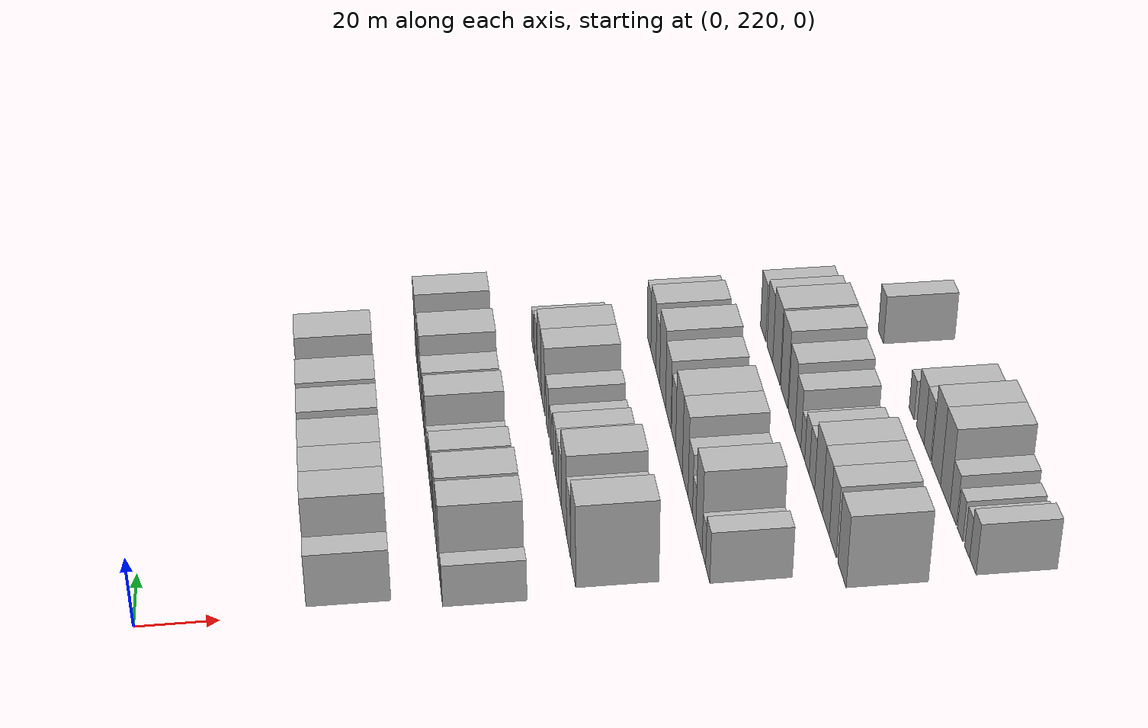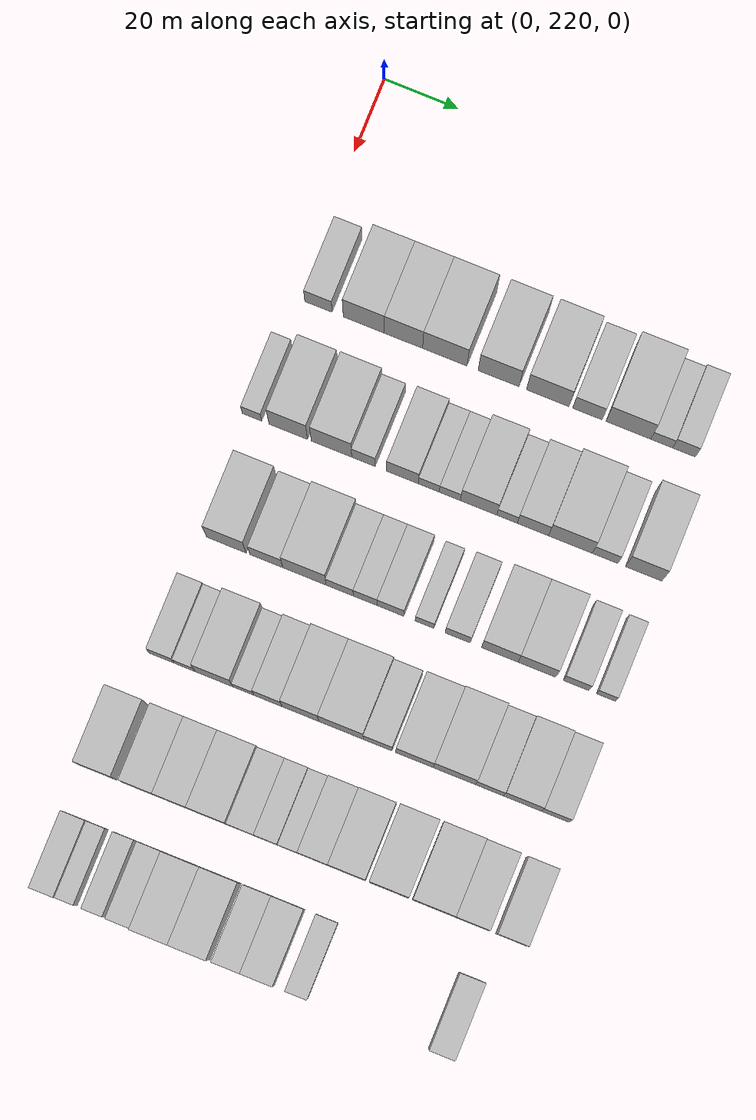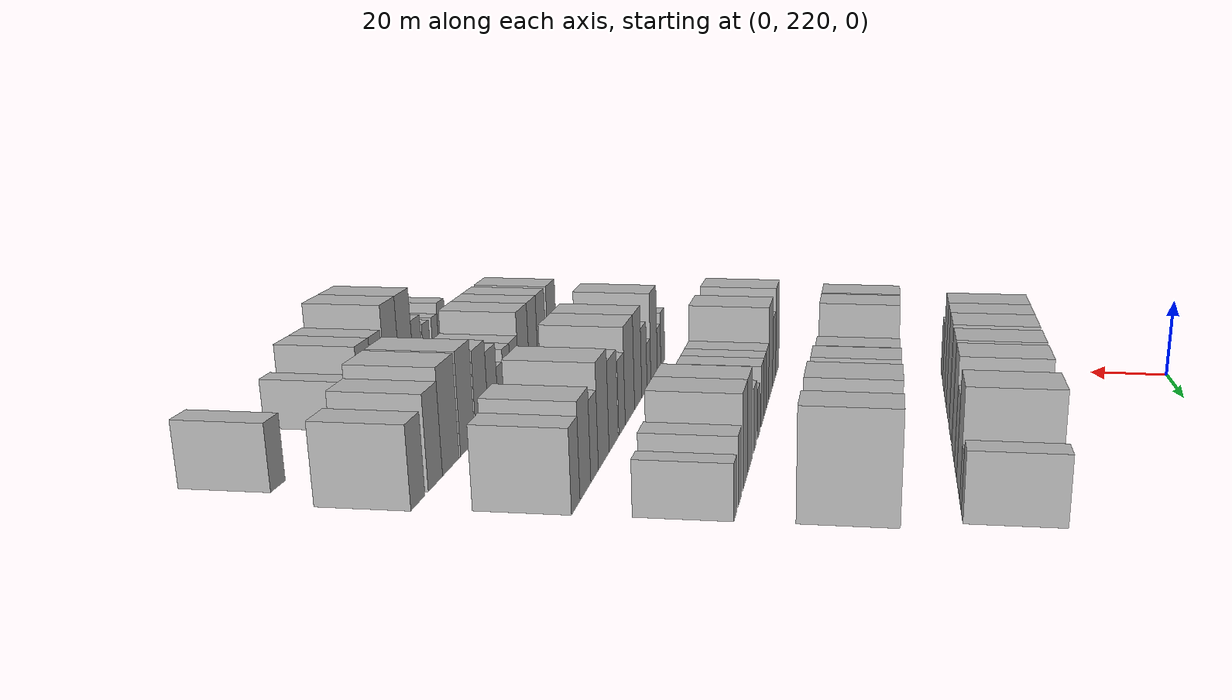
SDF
<sdf version="1.6">
 <world name="default">
  <model name="building_78">
   <static>1</static>
   <pose>50.0000 226.4135 0 0.000000 0.000000 0.000000</pose>
   <link name="link">
    <pose>0 0 7.50 0 0 0</pose>
    <collision name="collision"><geometry><box><size>20.0000 7.3429 15.0000</size></box></geometry></collision>
    <visual name="visual">
     <cast_shadows>0</cast_shadows>
     <geometry><box><size>20.0000 7.3429 15.0000</size></box></geometry>
     <material>
      <script>
       <uri>model://HANNAS_wall/materials/scripts</uri>
       <uri>model://HANNAS_wall/materials/textures</uri>
       <name>vrc/HANNAS_wall</name>
      </script>
     </material>
    </visual>
   </link>
  </model>
  <model name="building_79">
   <static>1</static>
   <pose>50.0000 238.5901 0 0.000000 0.000000 0.000000</pose>
   <link name="link">
    <pose>0 0 12.00 0 0 0</pose>
    <collision name="collision"><geometry><box><size>20.0000 11.0103 24.0000</size></box></geometry></collision>
    <visual name="visual">
     <cast_shadows>0</cast_shadows>
     <geometry><box><size>20.0000 11.0103 24.0000</size></box></geometry>
     <material>
      <script>
       <uri>model://HANNAS_wall/materials/scripts</uri>
       <uri>model://HANNAS_wall/materials/textures</uri>
       <name>vrc/HANNAS_wall</name>
      </script>
     </material>
    </visual>
   </link>
  </model>
  <model name="building_80">
   <static>1</static>
   <pose>50.0000 249.2594 0 0.000000 0.000000 0.000000</pose>
   <link name="link">
    <pose>0 0 12.00 0 0 0</pose>
    <collision name="collision"><geometry><box><size>20.0000 10.3283 24.0000</size></box></geometry></collision>
    <visual name="visual">
     <cast_shadows>0</cast_shadows>
     <geometry><box><size>20.0000 10.3283 24.0000</size></box></geometry>
     <material>
      <script>
       <uri>model://HANNAS_wall/materials/scripts</uri>
       <uri>model://HANNAS_wall/materials/textures</uri>
       <name>vrc/HANNAS_wall</name>
      </script>
     </material>
    </visual>
   </link>
  </model>
  <model name="building_81">
   <static>1</static>
   <pose>50.0000 260.3841 0 0.000000 0.000000 0.000000</pose>
   <link name="link">
    <pose>0 0 12.00 0 0 0</pose>
    <collision name="collision"><geometry><box><size>20.0000 11.9211 24.0000</size></box></geometry></collision>
    <visual name="visual">
     <cast_shadows>0</cast_shadows>
     <geometry><box><size>20.0000 11.9211 24.0000</size></box></geometry>
     <material>
      <script>
       <uri>model://HANNAS_wall/materials/scripts</uri>
       <uri>model://HANNAS_wall/materials/textures</uri>
       <name>vrc/HANNAS_wall</name>
      </script>
     </material>
    </visual>
   </link>
  </model>
  <model name="building_82">
   <static>1</static>
   <pose>50.0000 274.8255 0 0.000000 0.000000 0.000000</pose>
   <link name="link">
    <pose>0 0 12.00 0 0 0</pose>
    <collision name="collision"><geometry><box><size>20.0000 10.9617 24.0000</size></box></geometry></collision>
    <visual name="visual">
     <cast_shadows>0</cast_shadows>
     <geometry><box><size>20.0000 10.9617 24.0000</size></box></geometry>
     <material>
      <script>
       <uri>model://HANNAS_wall/materials/scripts</uri>
       <uri>model://HANNAS_wall/materials/textures</uri>
       <name>vrc/HANNAS_wall</name>
      </script>
     </material>
    </visual>
   </link>
  </model>
  <model name="building_83">
   <static>1</static>
   <pose>50.0000 287.9975 0 0.000000 0.000000 0.000000</pose>
   <link name="link">
    <pose>0 0 12.00 0 0 0</pose>
    <collision name="collision"><geometry><box><size>20.0000 11.3823 24.0000</size></box></geometry></collision>
    <visual name="visual">
     <cast_shadows>0</cast_shadows>
     <geometry><box><size>20.0000 11.3823 24.0000</size></box></geometry>
     <material>
      <script>
       <uri>model://HANNAS_wall/materials/scripts</uri>
       <uri>model://HANNAS_wall/materials/textures</uri>
       <name>vrc/HANNAS_wall</name>
      </script>
     </material>
    </visual>
   </link>
  </model>
  <model name="building_84">
   <static>1</static>
   <pose>50.0000 298.6449 0 0.000000 0.000000 0.000000</pose>
   <link name="link">
    <pose>0 0 9.00 0 0 0</pose>
    <collision name="collision"><geometry><box><size>20.0000 7.9124 18.0000</size></box></geometry></collision>
    <visual name="visual">
     <cast_shadows>0</cast_shadows>
     <geometry><box><size>20.0000 7.9124 18.0000</size></box></geometry>
     <material>
      <script>
       <uri>model://HANNAS_wall/materials/scripts</uri>
       <uri>model://HANNAS_wall/materials/textures</uri>
       <name>vrc/HANNAS_wall</name>
      </script>
     </material>
    </visual>
   </link>
  </model>
  <model name="building_85">
   <static>1</static>
   <pose>50.0000 309.5856 0 0.000000 0.000000 0.000000</pose>
   <link name="link">
    <pose>0 0 12.00 0 0 0</pose>
    <collision name="collision"><geometry><box><size>20.0000 11.9690 24.0000</size></box></geometry></collision>
    <visual name="visual">
     <cast_shadows>0</cast_shadows>
     <geometry><box><size>20.0000 11.9690 24.0000</size></box></geometry>
     <material>
      <script>
       <uri>model://HANNAS_wall/materials/scripts</uri>
       <uri>model://HANNAS_wall/materials/textures</uri>
       <name>vrc/HANNAS_wall</name>
      </script>
     </material>
    </visual>
   </link>
  </model>
  <model name="building_86">
   <static>1</static>
   <pose>50.0000 318.4888 0 0.000000 0.000000 0.000000</pose>
   <link name="link">
    <pose>0 0 6.00 0 0 0</pose>
    <collision name="collision"><geometry><box><size>20.0000 5.8375 12.0000</size></box></geometry></collision>
    <visual name="visual">
     <cast_shadows>0</cast_shadows>
     <geometry><box><size>20.0000 5.8375 12.0000</size></box></geometry>
     <material>
      <script>
       <uri>model://HANNAS_wall/materials/scripts</uri>
       <uri>model://HANNAS_wall/materials/textures</uri>
       <name>vrc/HANNAS_wall</name>
      </script>
     </material>
    </visual>
   </link>
  </model>
  <model name="building_87">
   <static>1</static>
   <pose>50.0000 324.4644 0 0.000000 0.000000 0.000000</pose>
   <link name="link">
    <pose>0 0 7.50 0 0 0</pose>
    <collision name="collision"><geometry><box><size>20.0000 6.1135 15.0000</size></box></geometry></collision>
    <visual name="visual">
     <cast_shadows>0</cast_shadows>
     <geometry><box><size>20.0000 6.1135 15.0000</size></box></geometry>
     <material>
      <script>
       <uri>model://HANNAS_wall/materials/scripts</uri>
       <uri>model://HANNAS_wall/materials/textures</uri>
       <name>vrc/HANNAS_wall</name>
      </script>
     </material>
    </visual>
   </link>
  </model>
  <model name="building_179">
   <static>1</static>
   <pose>82.0000 221.5475 0 0.000000 0.000000 0.000000</pose>
   <link name="link">
    <pose>0 0 6.00 0 0 0</pose>
    <collision name="collision"><geometry><box><size>20.0000 5.1951 12.0000</size></box></geometry></collision>
    <visual name="visual">
     <cast_shadows>0</cast_shadows>
     <geometry><box><size>20.0000 5.1951 12.0000</size></box></geometry>
     <material>
      <script>
       <uri>model://HANNAS_wall/materials/scripts</uri>
       <uri>model://HANNAS_wall/materials/textures</uri>
       <name>vrc/HANNAS_wall</name>
      </script>
     </material>
    </visual>
   </link>
  </model>
  <model name="building_180">
   <static>1</static>
   <pose>82.0000 231.3109 0 0.000000 0.000000 0.000000</pose>
   <link name="link">
    <pose>0 0 12.00 0 0 0</pose>
    <collision name="collision"><geometry><box><size>20.0000 10.3318 24.0000</size></box></geometry></collision>
    <visual name="visual">
     <cast_shadows>0</cast_shadows>
     <geometry><box><size>20.0000 10.3318 24.0000</size></box></geometry>
     <material>
      <script>
       <uri>model://HANNAS_wall/materials/scripts</uri>
       <uri>model://HANNAS_wall/materials/textures</uri>
       <name>vrc/HANNAS_wall</name>
      </script>
     </material>
    </visual>
   </link>
  </model>
  <model name="building_181">
   <static>1</static>
   <pose>82.0000 242.8859 0 0.000000 0.000000 0.000000</pose>
   <link name="link">
    <pose>0 0 12.00 0 0 0</pose>
    <collision name="collision"><geometry><box><size>20.0000 10.8182 24.0000</size></box></geometry></collision>
    <visual name="visual">
     <cast_shadows>0</cast_shadows>
     <geometry><box><size>20.0000 10.8182 24.0000</size></box></geometry>
     <material>
      <script>
       <uri>model://HANNAS_wall/materials/scripts</uri>
       <uri>model://HANNAS_wall/materials/textures</uri>
       <name>vrc/HANNAS_wall</name>
      </script>
     </material>
    </visual>
   </link>
  </model>
  <model name="building_182">
   <static>1</static>
   <pose>82.0000 251.4532 0 0.000000 0.000000 0.000000</pose>
   <link name="link">
    <pose>0 0 7.50 0 0 0</pose>
    <collision name="collision"><geometry><box><size>20.0000 6.3163 15.0000</size></box></geometry></collision>
    <visual name="visual">
     <cast_shadows>0</cast_shadows>
     <geometry><box><size>20.0000 6.3163 15.0000</size></box></geometry>
     <material>
      <script>
       <uri>model://HANNAS_wall/materials/scripts</uri>
       <uri>model://HANNAS_wall/materials/textures</uri>
       <name>vrc/HANNAS_wall</name>
      </script>
     </material>
    </visual>
   </link>
  </model>
  <model name="building_183">
   <static>1</static>
   <pose>82.0000 261.8719 0 0.000000 0.000000 0.000000</pose>
   <link name="link">
    <pose>0 0 9.00 0 0 0</pose>
    <collision name="collision"><geometry><box><size>20.0000 8.5211 18.0000</size></box></geometry></collision>
    <visual name="visual">
     <cast_shadows>0</cast_shadows>
     <geometry><box><size>20.0000 8.5211 18.0000</size></box></geometry>
     <material>
      <script>
       <uri>model://HANNAS_wall/materials/scripts</uri>
       <uri>model://HANNAS_wall/materials/textures</uri>
       <name>vrc/HANNAS_wall</name>
      </script>
     </material>
    </visual>
   </link>
  </model>
  <model name="building_184">
   <static>1</static>
   <pose>82.0000 268.9287 0 0.000000 0.000000 0.000000</pose>
   <link name="link">
    <pose>0 0 6.00 0 0 0</pose>
    <collision name="collision"><geometry><box><size>20.0000 5.5925 12.0000</size></box></geometry></collision>
    <visual name="visual">
     <cast_shadows>0</cast_shadows>
     <geometry><box><size>20.0000 5.5925 12.0000</size></box></geometry>
     <material>
      <script>
       <uri>model://HANNAS_wall/materials/scripts</uri>
       <uri>model://HANNAS_wall/materials/textures</uri>
       <name>vrc/HANNAS_wall</name>
      </script>
     </material>
    </visual>
   </link>
  </model>
  <model name="building_185">
   <static>1</static>
   <pose>82.0000 274.5625 0 0.000000 0.000000 0.000000</pose>
   <link name="link">
    <pose>0 0 6.00 0 0 0</pose>
    <collision name="collision"><geometry><box><size>20.0000 5.6750 12.0000</size></box></geometry></collision>
    <visual name="visual">
     <cast_shadows>0</cast_shadows>
     <geometry><box><size>20.0000 5.6750 12.0000</size></box></geometry>
     <material>
      <script>
       <uri>model://HANNAS_wall/materials/scripts</uri>
       <uri>model://HANNAS_wall/materials/textures</uri>
       <name>vrc/HANNAS_wall</name>
      </script>
     </material>
    </visual>
   </link>
  </model>
  <model name="building_186">
   <static>1</static>
   <pose>82.0000 282.2583 0 0.000000 0.000000 0.000000</pose>
   <link name="link">
    <pose>0 0 10.50 0 0 0</pose>
    <collision name="collision"><geometry><box><size>20.0000 9.7166 21.0000</size></box></geometry></collision>
    <visual name="visual">
     <cast_shadows>0</cast_shadows>
     <geometry><box><size>20.0000 9.7166 21.0000</size></box></geometry>
     <material>
      <script>
       <uri>model://HANNAS_wall/materials/scripts</uri>
       <uri>model://HANNAS_wall/materials/textures</uri>
       <name>vrc/HANNAS_wall</name>
      </script>
     </material>
    </visual>
   </link>
  </model>
  <model name="building_187">
   <static>1</static>
   <pose>82.0000 289.8539 0 0.000000 0.000000 0.000000</pose>
   <link name="link">
    <pose>0 0 6.00 0 0 0</pose>
    <collision name="collision"><geometry><box><size>20.0000 5.4747 12.0000</size></box></geometry></collision>
    <visual name="visual">
     <cast_shadows>0</cast_shadows>
     <geometry><box><size>20.0000 5.4747 12.0000</size></box></geometry>
     <material>
      <script>
       <uri>model://HANNAS_wall/materials/scripts</uri>
       <uri>model://HANNAS_wall/materials/textures</uri>
       <name>vrc/HANNAS_wall</name>
      </script>
     </material>
    </visual>
   </link>
  </model>
  <model name="building_188">
   <static>1</static>
   <pose>82.0000 296.7579 0 0.000000 0.000000 0.000000</pose>
   <link name="link">
    <pose>0 0 9.00 0 0 0</pose>
    <collision name="collision"><geometry><box><size>20.0000 8.3334 18.0000</size></box></geometry></collision>
    <visual name="visual">
     <cast_shadows>0</cast_shadows>
     <geometry><box><size>20.0000 8.3334 18.0000</size></box></geometry>
     <material>
      <script>
       <uri>model://HANNAS_wall/materials/scripts</uri>
       <uri>model://HANNAS_wall/materials/textures</uri>
       <name>vrc/HANNAS_wall</name>
      </script>
     </material>
    </visual>
   </link>
  </model>
  <model name="building_189">
   <static>1</static>
   <pose>82.0000 306.7646 0 0.000000 0.000000 0.000000</pose>
   <link name="link">
    <pose>0 0 12.00 0 0 0</pose>
    <collision name="collision"><geometry><box><size>20.0000 11.6799 24.0000</size></box></geometry></collision>
    <visual name="visual">
     <cast_shadows>0</cast_shadows>
     <geometry><box><size>20.0000 11.6799 24.0000</size></box></geometry>
     <material>
      <script>
       <uri>model://HANNAS_wall/materials/scripts</uri>
       <uri>model://HANNAS_wall/materials/textures</uri>
       <name>vrc/HANNAS_wall</name>
      </script>
     </material>
    </visual>
   </link>
  </model>
  <model name="building_190">
   <static>1</static>
   <pose>82.0000 316.0292 0 0.000000 0.000000 0.000000</pose>
   <link name="link">
    <pose>0 0 7.50 0 0 0</pose>
    <collision name="collision"><geometry><box><size>20.0000 6.8494 15.0000</size></box></geometry></collision>
    <visual name="visual">
     <cast_shadows>0</cast_shadows>
     <geometry><box><size>20.0000 6.8494 15.0000</size></box></geometry>
     <material>
      <script>
       <uri>model://HANNAS_wall/materials/scripts</uri>
       <uri>model://HANNAS_wall/materials/textures</uri>
       <name>vrc/HANNAS_wall</name>
      </script>
     </material>
    </visual>
   </link>
  </model>
  <model name="building_191">
   <static>1</static>
   <pose>82.0000 326.2964 0 0.000000 0.000000 0.000000</pose>
   <link name="link">
    <pose>0 0 12.00 0 0 0</pose>
    <collision name="collision"><geometry><box><size>20.0000 9.6848 24.0000</size></box></geometry></collision>
    <visual name="visual">
     <cast_shadows>0</cast_shadows>
     <geometry><box><size>20.0000 9.6848 24.0000</size></box></geometry>
     <material>
      <script>
       <uri>model://HANNAS_wall/materials/scripts</uri>
       <uri>model://HANNAS_wall/materials/textures</uri>
       <name>vrc/HANNAS_wall</name>
      </script>
     </material>
    </visual>
   </link>
  </model>
  <model name="building_301">
   <static>1</static>
   <pose>114.0000 227.7849 0 0.000000 0.000000 0.000000</pose>
   <link name="link">
    <pose>0 0 12.00 0 0 0</pose>
    <collision name="collision"><geometry><box><size>20.0000 10.5627 24.0000</size></box></geometry></collision>
    <visual name="visual">
     <cast_shadows>0</cast_shadows>
     <geometry><box><size>20.0000 10.5627 24.0000</size></box></geometry>
     <material>
      <script>
       <uri>model://HANNAS_wall/materials/scripts</uri>
       <uri>model://HANNAS_wall/materials/textures</uri>
       <name>vrc/HANNAS_wall</name>
      </script>
     </material>
    </visual>
   </link>
  </model>
  <model name="building_302">
   <static>1</static>
   <pose>114.0000 238.4668 0 0.000000 0.000000 0.000000</pose>
   <link name="link">
    <pose>0 0 9.00 0 0 0</pose>
    <collision name="collision"><geometry><box><size>20.0000 8.8010 18.0000</size></box></geometry></collision>
    <visual name="visual">
     <cast_shadows>0</cast_shadows>
     <geometry><box><size>20.0000 8.8010 18.0000</size></box></geometry>
     <material>
      <script>
       <uri>model://HANNAS_wall/materials/scripts</uri>
       <uri>model://HANNAS_wall/materials/textures</uri>
       <name>vrc/HANNAS_wall</name>
      </script>
     </material>
    </visual>
   </link>
  </model>
  <model name="building_303">
   <static>1</static>
   <pose>114.0000 248.6417 0 0.000000 0.000000 0.000000</pose>
   <link name="link">
    <pose>0 0 12.00 0 0 0</pose>
    <collision name="collision"><geometry><box><size>20.0000 11.5488 24.0000</size></box></geometry></collision>
    <visual name="visual">
     <cast_shadows>0</cast_shadows>
     <geometry><box><size>20.0000 11.5488 24.0000</size></box></geometry>
     <material>
      <script>
       <uri>model://HANNAS_wall/materials/scripts</uri>
       <uri>model://HANNAS_wall/materials/textures</uri>
       <name>vrc/HANNAS_wall</name>
      </script>
     </material>
    </visual>
   </link>
  </model>
  <model name="building_304">
   <static>1</static>
   <pose>114.0000 258.0569 0 0.000000 0.000000 0.000000</pose>
   <link name="link">
    <pose>0 0 7.50 0 0 0</pose>
    <collision name="collision"><geometry><box><size>20.0000 7.2815 15.0000</size></box></geometry></collision>
    <visual name="visual">
     <cast_shadows>0</cast_shadows>
     <geometry><box><size>20.0000 7.2815 15.0000</size></box></geometry>
     <material>
      <script>
       <uri>model://HANNAS_wall/materials/scripts</uri>
       <uri>model://HANNAS_wall/materials/textures</uri>
       <name>vrc/HANNAS_wall</name>
      </script>
     </material>
    </visual>
   </link>
  </model>
  <model name="building_305">
   <static>1</static>
   <pose>114.0000 264.8349 0 0.000000 0.000000 0.000000</pose>
   <link name="link">
    <pose>0 0 7.50 0 0 0</pose>
    <collision name="collision"><geometry><box><size>20.0000 6.2746 15.0000</size></box></geometry></collision>
    <visual name="visual">
     <cast_shadows>0</cast_shadows>
     <geometry><box><size>20.0000 6.2746 15.0000</size></box></geometry>
     <material>
      <script>
       <uri>model://HANNAS_wall/materials/scripts</uri>
       <uri>model://HANNAS_wall/materials/textures</uri>
       <name>vrc/HANNAS_wall</name>
      </script>
     </material>
    </visual>
   </link>
  </model>
  <model name="building_306">
   <static>1</static>
   <pose>114.0000 271.5600 0 0.000000 0.000000 0.000000</pose>
   <link name="link">
    <pose>0 0 7.50 0 0 0</pose>
    <collision name="collision"><geometry><box><size>20.0000 7.1756 15.0000</size></box></geometry></collision>
    <visual name="visual">
     <cast_shadows>0</cast_shadows>
     <geometry><box><size>20.0000 7.1756 15.0000</size></box></geometry>
     <material>
      <script>
       <uri>model://HANNAS_wall/materials/scripts</uri>
       <uri>model://HANNAS_wall/materials/textures</uri>
       <name>vrc/HANNAS_wall</name>
      </script>
     </material>
    </visual>
   </link>
  </model>
  <model name="building_307">
   <static>1</static>
   <pose>114.0000 280.6509 0 0.000000 0.000000 0.000000</pose>
   <link name="link">
    <pose>0 0 6.00 0 0 0</pose>
    <collision name="collision"><geometry><box><size>20.0000 5.0061 12.0000</size></box></geometry></collision>
    <visual name="visual">
     <cast_shadows>0</cast_shadows>
     <geometry><box><size>20.0000 5.0061 12.0000</size></box></geometry>
     <material>
      <script>
       <uri>model://HANNAS_wall/materials/scripts</uri>
       <uri>model://HANNAS_wall/materials/textures</uri>
       <name>vrc/HANNAS_wall</name>
      </script>
     </material>
    </visual>
   </link>
  </model>
  <model name="building_308">
   <static>1</static>
   <pose>114.0000 289.5008 0 0.000000 0.000000 0.000000</pose>
   <link name="link">
    <pose>0 0 7.50 0 0 0</pose>
    <collision name="collision"><geometry><box><size>20.0000 6.6936 15.0000</size></box></geometry></collision>
    <visual name="visual">
     <cast_shadows>0</cast_shadows>
     <geometry><box><size>20.0000 6.6936 15.0000</size></box></geometry>
     <material>
      <script>
       <uri>model://HANNAS_wall/materials/scripts</uri>
       <uri>model://HANNAS_wall/materials/textures</uri>
       <name>vrc/HANNAS_wall</name>
      </script>
     </material>
    </visual>
   </link>
  </model>
  <model name="building_309">
   <static>1</static>
   <pose>114.0000 300.6900 0 0.000000 0.000000 0.000000</pose>
   <link name="link">
    <pose>0 0 10.50 0 0 0</pose>
    <collision name="collision"><geometry><box><size>20.0000 9.6849 21.0000</size></box></geometry></collision>
    <visual name="visual">
     <cast_shadows>0</cast_shadows>
     <geometry><box><size>20.0000 9.6849 21.0000</size></box></geometry>
     <material>
      <script>
       <uri>model://HANNAS_wall/materials/scripts</uri>
       <uri>model://HANNAS_wall/materials/textures</uri>
       <name>vrc/HANNAS_wall</name>
      </script>
     </material>
    </visual>
   </link>
  </model>
  <model name="building_310">
   <static>1</static>
   <pose>114.0000 310.5525 0 0.000000 0.000000 0.000000</pose>
   <link name="link">
    <pose>0 0 10.50 0 0 0</pose>
    <collision name="collision"><geometry><box><size>20.0000 10.0399 21.0000</size></box></geometry></collision>
    <visual name="visual">
     <cast_shadows>0</cast_shadows>
     <geometry><box><size>20.0000 10.0399 21.0000</size></box></geometry>
     <material>
      <script>
       <uri>model://HANNAS_wall/materials/scripts</uri>
       <uri>model://HANNAS_wall/materials/textures</uri>
       <name>vrc/HANNAS_wall</name>
      </script>
     </material>
    </visual>
   </link>
  </model>
  <model name="building_311">
   <static>1</static>
   <pose>114.0000 320.9832 0 0.000000 0.000000 0.000000</pose>
   <link name="link">
    <pose>0 0 7.50 0 0 0</pose>
    <collision name="collision"><geometry><box><size>20.0000 6.8216 15.0000</size></box></geometry></collision>
    <visual name="visual">
     <cast_shadows>0</cast_shadows>
     <geometry><box><size>20.0000 6.8216 15.0000</size></box></geometry>
     <material>
      <script>
       <uri>model://HANNAS_wall/materials/scripts</uri>
       <uri>model://HANNAS_wall/materials/textures</uri>
       <name>vrc/HANNAS_wall</name>
      </script>
     </material>
    </visual>
   </link>
  </model>
  <model name="building_312">
   <static>1</static>
   <pose>114.0000 328.9063 0 0.000000 0.000000 0.000000</pose>
   <link name="link">
    <pose>0 0 6.00 0 0 0</pose>
    <collision name="collision"><geometry><box><size>20.0000 5.0246 12.0000</size></box></geometry></collision>
    <visual name="visual">
     <cast_shadows>0</cast_shadows>
     <geometry><box><size>20.0000 5.0246 12.0000</size></box></geometry>
     <material>
      <script>
       <uri>model://HANNAS_wall/materials/scripts</uri>
       <uri>model://HANNAS_wall/materials/textures</uri>
       <name>vrc/HANNAS_wall</name>
      </script>
     </material>
    </visual>
   </link>
  </model>
  <model name="building_425">
   <static>1</static>
   <pose>146.0000 223.6901 0 0.000000 0.000000 0.000000</pose>
   <link name="link">
    <pose>0 0 7.50 0 0 0</pose>
    <collision name="collision"><geometry><box><size>20.0000 6.6378 15.0000</size></box></geometry></collision>
    <visual name="visual">
     <cast_shadows>0</cast_shadows>
     <geometry><box><size>20.0000 6.6378 15.0000</size></box></geometry>
     <material>
      <script>
       <uri>model://HANNAS_wall/materials/scripts</uri>
       <uri>model://HANNAS_wall/materials/textures</uri>
       <name>vrc/HANNAS_wall</name>
      </script>
     </material>
    </visual>
   </link>
  </model>
  <model name="building_426">
   <static>1</static>
   <pose>146.0000 229.8246 0 0.000000 0.000000 0.000000</pose>
   <link name="link">
    <pose>0 0 6.00 0 0 0</pose>
    <collision name="collision"><geometry><box><size>20.0000 5.6311 12.0000</size></box></geometry></collision>
    <visual name="visual">
     <cast_shadows>0</cast_shadows>
     <geometry><box><size>20.0000 5.6311 12.0000</size></box></geometry>
     <material>
      <script>
       <uri>model://HANNAS_wall/materials/scripts</uri>
       <uri>model://HANNAS_wall/materials/textures</uri>
       <name>vrc/HANNAS_wall</name>
      </script>
     </material>
    </visual>
   </link>
  </model>
  <model name="building_427">
   <static>1</static>
   <pose>146.0000 237.6427 0 0.000000 0.000000 0.000000</pose>
   <link name="link">
    <pose>0 0 12.00 0 0 0</pose>
    <collision name="collision"><geometry><box><size>20.0000 10.0051 24.0000</size></box></geometry></collision>
    <visual name="visual">
     <cast_shadows>0</cast_shadows>
     <geometry><box><size>20.0000 10.0051 24.0000</size></box></geometry>
     <material>
      <script>
       <uri>model://HANNAS_wall/materials/scripts</uri>
       <uri>model://HANNAS_wall/materials/textures</uri>
       <name>vrc/HANNAS_wall</name>
      </script>
     </material>
    </visual>
   </link>
  </model>
  <model name="building_428">
   <static>1</static>
   <pose>146.0000 245.4409 0 0.000000 0.000000 0.000000</pose>
   <link name="link">
    <pose>0 0 6.00 0 0 0</pose>
    <collision name="collision"><geometry><box><size>20.0000 5.5914 12.0000</size></box></geometry></collision>
    <visual name="visual">
     <cast_shadows>0</cast_shadows>
     <geometry><box><size>20.0000 5.5914 12.0000</size></box></geometry>
     <material>
      <script>
       <uri>model://HANNAS_wall/materials/scripts</uri>
       <uri>model://HANNAS_wall/materials/textures</uri>
       <name>vrc/HANNAS_wall</name>
      </script>
     </material>
    </visual>
   </link>
  </model>
  <model name="building_429">
   <static>1</static>
   <pose>146.0000 251.9686 0 0.000000 0.000000 0.000000</pose>
   <link name="link">
    <pose>0 0 9.00 0 0 0</pose>
    <collision name="collision"><geometry><box><size>20.0000 7.4640 18.0000</size></box></geometry></collision>
    <visual name="visual">
     <cast_shadows>0</cast_shadows>
     <geometry><box><size>20.0000 7.4640 18.0000</size></box></geometry>
     <material>
      <script>
       <uri>model://HANNAS_wall/materials/scripts</uri>
       <uri>model://HANNAS_wall/materials/textures</uri>
       <name>vrc/HANNAS_wall</name>
      </script>
     </material>
    </visual>
   </link>
  </model>
  <model name="building_430">
   <static>1</static>
   <pose>146.0000 260.5795 0 0.000000 0.000000 0.000000</pose>
   <link name="link">
    <pose>0 0 12.00 0 0 0</pose>
    <collision name="collision"><geometry><box><size>20.0000 9.7578 24.0000</size></box></geometry></collision>
    <visual name="visual">
     <cast_shadows>0</cast_shadows>
     <geometry><box><size>20.0000 9.7578 24.0000</size></box></geometry>
     <material>
      <script>
       <uri>model://HANNAS_wall/materials/scripts</uri>
       <uri>model://HANNAS_wall/materials/textures</uri>
       <name>vrc/HANNAS_wall</name>
      </script>
     </material>
    </visual>
   </link>
  </model>
  <model name="building_431">
   <static>1</static>
   <pose>146.0000 271.3663 0 0.000000 0.000000 0.000000</pose>
   <link name="link">
    <pose>0 0 12.00 0 0 0</pose>
    <collision name="collision"><geometry><box><size>20.0000 11.8159 24.0000</size></box></geometry></collision>
    <visual name="visual">
     <cast_shadows>0</cast_shadows>
     <geometry><box><size>20.0000 11.8159 24.0000</size></box></geometry>
     <material>
      <script>
       <uri>model://HANNAS_wall/materials/scripts</uri>
       <uri>model://HANNAS_wall/materials/textures</uri>
       <name>vrc/HANNAS_wall</name>
      </script>
     </material>
    </visual>
   </link>
  </model>
  <model name="building_432">
   <static>1</static>
   <pose>146.0000 281.0857 0 0.000000 0.000000 0.000000</pose>
   <link name="link">
    <pose>0 0 9.00 0 0 0</pose>
    <collision name="collision"><geometry><box><size>20.0000 7.6229 18.0000</size></box></geometry></collision>
    <visual name="visual">
     <cast_shadows>0</cast_shadows>
     <geometry><box><size>20.0000 7.6229 18.0000</size></box></geometry>
     <material>
      <script>
       <uri>model://HANNAS_wall/materials/scripts</uri>
       <uri>model://HANNAS_wall/materials/textures</uri>
       <name>vrc/HANNAS_wall</name>
      </script>
     </material>
    </visual>
   </link>
  </model>
  <model name="building_433">
   <static>1</static>
   <pose>146.0000 290.8778 0 0.000000 0.000000 0.000000</pose>
   <link name="link">
    <pose>0 0 10.50 0 0 0</pose>
    <collision name="collision"><geometry><box><size>20.0000 9.9612 21.0000</size></box></geometry></collision>
    <visual name="visual">
     <cast_shadows>0</cast_shadows>
     <geometry><box><size>20.0000 9.9612 21.0000</size></box></geometry>
     <material>
      <script>
       <uri>model://HANNAS_wall/materials/scripts</uri>
       <uri>model://HANNAS_wall/materials/textures</uri>
       <name>vrc/HANNAS_wall</name>
      </script>
     </material>
    </visual>
   </link>
  </model>
  <model name="building_434">
   <static>1</static>
   <pose>146.0000 301.4423 0 0.000000 0.000000 0.000000</pose>
   <link name="link">
    <pose>0 0 12.00 0 0 0</pose>
    <collision name="collision"><geometry><box><size>20.0000 11.1678 24.0000</size></box></geometry></collision>
    <visual name="visual">
     <cast_shadows>0</cast_shadows>
     <geometry><box><size>20.0000 11.1678 24.0000</size></box></geometry>
     <material>
      <script>
       <uri>model://HANNAS_wall/materials/scripts</uri>
       <uri>model://HANNAS_wall/materials/textures</uri>
       <name>vrc/HANNAS_wall</name>
      </script>
     </material>
    </visual>
   </link>
  </model>
  <model name="building_435">
   <static>1</static>
   <pose>146.0000 310.7308 0 0.000000 0.000000 0.000000</pose>
   <link name="link">
    <pose>0 0 9.00 0 0 0</pose>
    <collision name="collision"><geometry><box><size>20.0000 7.4093 18.0000</size></box></geometry></collision>
    <visual name="visual">
     <cast_shadows>0</cast_shadows>
     <geometry><box><size>20.0000 7.4093 18.0000</size></box></geometry>
     <material>
      <script>
       <uri>model://HANNAS_wall/materials/scripts</uri>
       <uri>model://HANNAS_wall/materials/textures</uri>
       <name>vrc/HANNAS_wall</name>
      </script>
     </material>
    </visual>
   </link>
  </model>
  <model name="building_436">
   <static>1</static>
   <pose>146.0000 319.4147 0 0.000000 0.000000 0.000000</pose>
   <link name="link">
    <pose>0 0 10.50 0 0 0</pose>
    <collision name="collision"><geometry><box><size>20.0000 9.9584 21.0000</size></box></geometry></collision>
    <visual name="visual">
     <cast_shadows>0</cast_shadows>
     <geometry><box><size>20.0000 9.9584 21.0000</size></box></geometry>
     <material>
      <script>
       <uri>model://HANNAS_wall/materials/scripts</uri>
       <uri>model://HANNAS_wall/materials/textures</uri>
       <name>vrc/HANNAS_wall</name>
      </script>
     </material>
    </visual>
   </link>
  </model>
  <model name="building_437">
   <static>1</static>
   <pose>146.0000 328.0894 0 0.000000 0.000000 0.000000</pose>
   <link name="link">
    <pose>0 0 9.00 0 0 0</pose>
    <collision name="collision"><geometry><box><size>20.0000 7.3910 18.0000</size></box></geometry></collision>
    <visual name="visual">
     <cast_shadows>0</cast_shadows>
     <geometry><box><size>20.0000 7.3910 18.0000</size></box></geometry>
     <material>
      <script>
       <uri>model://HANNAS_wall/materials/scripts</uri>
       <uri>model://HANNAS_wall/materials/textures</uri>
       <name>vrc/HANNAS_wall</name>
      </script>
     </material>
    </visual>
   </link>
  </model>
  <model name="building_550">
   <static>1</static>
   <pose>178.0000 219.8349 0 0.000000 0.000000 0.000000</pose>
   <link name="link">
    <pose>0 0 10.50 0 0 0</pose>
    <collision name="collision"><geometry><box><size>20.0000 9.8745 21.0000</size></box></geometry></collision>
    <visual name="visual">
     <cast_shadows>0</cast_shadows>
     <geometry><box><size>20.0000 9.8745 21.0000</size></box></geometry>
     <material>
      <script>
       <uri>model://HANNAS_wall/materials/scripts</uri>
       <uri>model://HANNAS_wall/materials/textures</uri>
       <name>vrc/HANNAS_wall</name>
      </script>
     </material>
    </visual>
   </link>
  </model>
  <model name="building_551">
   <static>1</static>
   <pose>178.0000 231.1378 0 0.000000 0.000000 0.000000</pose>
   <link name="link">
    <pose>0 0 10.50 0 0 0</pose>
    <collision name="collision"><geometry><box><size>20.0000 8.7315 21.0000</size></box></geometry></collision>
    <visual name="visual">
     <cast_shadows>0</cast_shadows>
     <geometry><box><size>20.0000 8.7315 21.0000</size></box></geometry>
     <material>
      <script>
       <uri>model://HANNAS_wall/materials/scripts</uri>
       <uri>model://HANNAS_wall/materials/textures</uri>
       <name>vrc/HANNAS_wall</name>
      </script>
     </material>
    </visual>
   </link>
  </model>
  <model name="building_552">
   <static>1</static>
   <pose>178.0000 239.8921 0 0.000000 0.000000 0.000000</pose>
   <link name="link">
    <pose>0 0 10.50 0 0 0</pose>
    <collision name="collision"><geometry><box><size>20.0000 8.7770 21.0000</size></box></geometry></collision>
    <visual name="visual">
     <cast_shadows>0</cast_shadows>
     <geometry><box><size>20.0000 8.7770 21.0000</size></box></geometry>
     <material>
      <script>
       <uri>model://HANNAS_wall/materials/scripts</uri>
       <uri>model://HANNAS_wall/materials/textures</uri>
       <name>vrc/HANNAS_wall</name>
      </script>
     </material>
    </visual>
   </link>
  </model>
  <model name="building_553">
   <static>1</static>
   <pose>178.0000 249.3375 0 0.000000 0.000000 0.000000</pose>
   <link name="link">
    <pose>0 0 10.50 0 0 0</pose>
    <collision name="collision"><geometry><box><size>20.0000 10.1139 21.0000</size></box></geometry></collision>
    <visual name="visual">
     <cast_shadows>0</cast_shadows>
     <geometry><box><size>20.0000 10.1139 21.0000</size></box></geometry>
     <material>
      <script>
       <uri>model://HANNAS_wall/materials/scripts</uri>
       <uri>model://HANNAS_wall/materials/textures</uri>
       <name>vrc/HANNAS_wall</name>
      </script>
     </material>
    </visual>
   </link>
  </model>
  <model name="building_554">
   <static>1</static>
   <pose>178.0000 258.0047 0 0.000000 0.000000 0.000000</pose>
   <link name="link">
    <pose>0 0 7.50 0 0 0</pose>
    <collision name="collision"><geometry><box><size>20.0000 7.2205 15.0000</size></box></geometry></collision>
    <visual name="visual">
     <cast_shadows>0</cast_shadows>
     <geometry><box><size>20.0000 7.2205 15.0000</size></box></geometry>
     <material>
      <script>
       <uri>model://HANNAS_wall/materials/scripts</uri>
       <uri>model://HANNAS_wall/materials/textures</uri>
       <name>vrc/HANNAS_wall</name>
      </script>
     </material>
    </visual>
   </link>
  </model>
  <model name="building_555">
   <static>1</static>
   <pose>178.0000 264.6868 0 0.000000 0.000000 0.000000</pose>
   <link name="link">
    <pose>0 0 7.50 0 0 0</pose>
    <collision name="collision"><geometry><box><size>20.0000 6.1435 15.0000</size></box></geometry></collision>
    <visual name="visual">
     <cast_shadows>0</cast_shadows>
     <geometry><box><size>20.0000 6.1435 15.0000</size></box></geometry>
     <material>
      <script>
       <uri>model://HANNAS_wall/materials/scripts</uri>
       <uri>model://HANNAS_wall/materials/textures</uri>
       <name>vrc/HANNAS_wall</name>
      </script>
     </material>
    </visual>
   </link>
  </model>
  <model name="building_556">
   <static>1</static>
   <pose>178.0000 270.4043 0 0.000000 0.000000 0.000000</pose>
   <link name="link">
    <pose>0 0 6.00 0 0 0</pose>
    <collision name="collision"><geometry><box><size>20.0000 5.2915 12.0000</size></box></geometry></collision>
    <visual name="visual">
     <cast_shadows>0</cast_shadows>
     <geometry><box><size>20.0000 5.2915 12.0000</size></box></geometry>
     <material>
      <script>
       <uri>model://HANNAS_wall/materials/scripts</uri>
       <uri>model://HANNAS_wall/materials/textures</uri>
       <name>vrc/HANNAS_wall</name>
      </script>
     </material>
    </visual>
   </link>
  </model>
  <model name="building_557">
   <static>1</static>
   <pose>178.0000 277.0420 0 0.000000 0.000000 0.000000</pose>
   <link name="link">
    <pose>0 0 9.00 0 0 0</pose>
    <collision name="collision"><geometry><box><size>20.0000 7.9840 18.0000</size></box></geometry></collision>
    <visual name="visual">
     <cast_shadows>0</cast_shadows>
     <geometry><box><size>20.0000 7.9840 18.0000</size></box></geometry>
     <material>
      <script>
       <uri>model://HANNAS_wall/materials/scripts</uri>
       <uri>model://HANNAS_wall/materials/textures</uri>
       <name>vrc/HANNAS_wall</name>
      </script>
     </material>
    </visual>
   </link>
  </model>
  <model name="building_558">
   <static>1</static>
   <pose>178.0000 285.9303 0 0.000000 0.000000 0.000000</pose>
   <link name="link">
    <pose>0 0 10.50 0 0 0</pose>
    <collision name="collision"><geometry><box><size>20.0000 9.7925 21.0000</size></box></geometry></collision>
    <visual name="visual">
     <cast_shadows>0</cast_shadows>
     <geometry><box><size>20.0000 9.7925 21.0000</size></box></geometry>
     <material>
      <script>
       <uri>model://HANNAS_wall/materials/scripts</uri>
       <uri>model://HANNAS_wall/materials/textures</uri>
       <name>vrc/HANNAS_wall</name>
      </script>
     </material>
    </visual>
   </link>
  </model>
  <model name="building_559">
   <static>1</static>
   <pose>178.0000 296.9766 0 0.000000 0.000000 0.000000</pose>
   <link name="link">
    <pose>0 0 12.00 0 0 0</pose>
    <collision name="collision"><geometry><box><size>20.0000 10.3000 24.0000</size></box></geometry></collision>
    <visual name="visual">
     <cast_shadows>0</cast_shadows>
     <geometry><box><size>20.0000 10.3000 24.0000</size></box></geometry>
     <material>
      <script>
       <uri>model://HANNAS_wall/materials/scripts</uri>
       <uri>model://HANNAS_wall/materials/textures</uri>
       <name>vrc/HANNAS_wall</name>
      </script>
     </material>
    </visual>
   </link>
  </model>
  <model name="building_560">
   <static>1</static>
   <pose>178.0000 308.6737 0 0.000000 0.000000 0.000000</pose>
   <link name="link">
    <pose>0 0 12.00 0 0 0</pose>
    <collision name="collision"><geometry><box><size>20.0000 11.0943 24.0000</size></box></geometry></collision>
    <visual name="visual">
     <cast_shadows>0</cast_shadows>
     <geometry><box><size>20.0000 11.0943 24.0000</size></box></geometry>
     <material>
      <script>
       <uri>model://HANNAS_wall/materials/scripts</uri>
       <uri>model://HANNAS_wall/materials/textures</uri>
       <name>vrc/HANNAS_wall</name>
      </script>
     </material>
    </visual>
   </link>
  </model>
  <model name="building_561">
   <static>1</static>
   <pose>178.0000 318.6838 0 0.000000 0.000000 0.000000</pose>
   <link name="link">
    <pose>0 0 10.50 0 0 0</pose>
    <collision name="collision"><geometry><box><size>20.0000 8.9258 21.0000</size></box></geometry></collision>
    <visual name="visual">
     <cast_shadows>0</cast_shadows>
     <geometry><box><size>20.0000 8.9258 21.0000</size></box></geometry>
     <material>
      <script>
       <uri>model://HANNAS_wall/materials/scripts</uri>
       <uri>model://HANNAS_wall/materials/textures</uri>
       <name>vrc/HANNAS_wall</name>
      </script>
     </material>
    </visual>
   </link>
  </model>
  <model name="building_562">
   <static>1</static>
   <pose>178.0000 329.2185 0 0.000000 0.000000 0.000000</pose>
   <link name="link">
    <pose>0 0 9.00 0 0 0</pose>
    <collision name="collision"><geometry><box><size>20.0000 8.1437 18.0000</size></box></geometry></collision>
    <visual name="visual">
     <cast_shadows>0</cast_shadows>
     <geometry><box><size>20.0000 8.1437 18.0000</size></box></geometry>
     <material>
      <script>
       <uri>model://HANNAS_wall/materials/scripts</uri>
       <uri>model://HANNAS_wall/materials/textures</uri>
       <name>vrc/HANNAS_wall</name>
      </script>
     </material>
    </visual>
   </link>
  </model>
  <model name="building_671">
   <static>1</static>
   <pose>210.0000 219.3450 0 0.000000 0.000000 0.000000</pose>
   <link name="link">
    <pose>0 0 7.50 0 0 0</pose>
    <collision name="collision"><geometry><box><size>20.0000 6.4203 15.0000</size></box></geometry></collision>
    <visual name="visual">
     <cast_shadows>0</cast_shadows>
     <geometry><box><size>20.0000 6.4203 15.0000</size></box></geometry>
     <material>
      <script>
       <uri>model://HANNAS_wall/materials/scripts</uri>
       <uri>model://HANNAS_wall/materials/textures</uri>
       <name>vrc/HANNAS_wall</name>
      </script>
     </material>
    </visual>
   </link>
  </model>
  <model name="building_672">
   <static>1</static>
   <pose>210.0000 225.0440 0 0.000000 0.000000 0.000000</pose>
   <link name="link">
    <pose>0 0 6.00 0 0 0</pose>
    <collision name="collision"><geometry><box><size>20.0000 4.9776 12.0000</size></box></geometry></collision>
    <visual name="visual">
     <cast_shadows>0</cast_shadows>
     <geometry><box><size>20.0000 4.9776 12.0000</size></box></geometry>
     <material>
      <script>
       <uri>model://HANNAS_wall/materials/scripts</uri>
       <uri>model://HANNAS_wall/materials/textures</uri>
       <name>vrc/HANNAS_wall</name>
      </script>
     </material>
    </visual>
   </link>
  </model>
  <model name="building_673">
   <static>1</static>
   <pose>210.0000 232.2950 0 0.000000 0.000000 0.000000</pose>
   <link name="link">
    <pose>0 0 6.00 0 0 0</pose>
    <collision name="collision"><geometry><box><size>20.0000 5.5245 12.0000</size></box></geometry></collision>
    <visual name="visual">
     <cast_shadows>0</cast_shadows>
     <geometry><box><size>20.0000 5.5245 12.0000</size></box></geometry>
     <material>
      <script>
       <uri>model://HANNAS_wall/materials/scripts</uri>
       <uri>model://HANNAS_wall/materials/textures</uri>
       <name>vrc/HANNAS_wall</name>
      </script>
     </material>
    </visual>
   </link>
  </model>
  <model name="building_674">
   <static>1</static>
   <pose>210.0000 239.4963 0 0.000000 0.000000 0.000000</pose>
   <link name="link">
    <pose>0 0 7.50 0 0 0</pose>
    <collision name="collision"><geometry><box><size>20.0000 6.8781 15.0000</size></box></geometry></collision>
    <visual name="visual">
     <cast_shadows>0</cast_shadows>
     <geometry><box><size>20.0000 6.8781 15.0000</size></box></geometry>
     <material>
      <script>
       <uri>model://HANNAS_wall/materials/scripts</uri>
       <uri>model://HANNAS_wall/materials/textures</uri>
       <name>vrc/HANNAS_wall</name>
      </script>
     </material>
    </visual>
   </link>
  </model>
  <model name="building_675">
   <static>1</static>
   <pose>210.0000 247.9101 0 0.000000 0.000000 0.000000</pose>
   <link name="link">
    <pose>0 0 12.00 0 0 0</pose>
    <collision name="collision"><geometry><box><size>20.0000 9.9495 24.0000</size></box></geometry></collision>
    <visual name="visual">
     <cast_shadows>0</cast_shadows>
     <geometry><box><size>20.0000 9.9495 24.0000</size></box></geometry>
     <material>
      <script>
       <uri>model://HANNAS_wall/materials/scripts</uri>
       <uri>model://HANNAS_wall/materials/textures</uri>
       <name>vrc/HANNAS_wall</name>
      </script>
     </material>
    </visual>
   </link>
  </model>
  <model name="building_676">
   <static>1</static>
   <pose>210.0000 257.8325 0 0.000000 0.000000 0.000000</pose>
   <link name="link">
    <pose>0 0 12.00 0 0 0</pose>
    <collision name="collision"><geometry><box><size>20.0000 9.8953 24.0000</size></box></geometry></collision>
    <visual name="visual">
     <cast_shadows>0</cast_shadows>
     <geometry><box><size>20.0000 9.8953 24.0000</size></box></geometry>
     <material>
      <script>
       <uri>model://HANNAS_wall/materials/scripts</uri>
       <uri>model://HANNAS_wall/materials/textures</uri>
       <name>vrc/HANNAS_wall</name>
      </script>
     </material>
    </visual>
   </link>
  </model>
  <model name="building_677">
   <static>1</static>
   <pose>210.0000 267.4987 0 0.000000 0.000000 0.000000</pose>
   <link name="link">
    <pose>0 0 9.00 0 0 0</pose>
    <collision name="collision"><geometry><box><size>20.0000 7.4371 18.0000</size></box></geometry></collision>
    <visual name="visual">
     <cast_shadows>0</cast_shadows>
     <geometry><box><size>20.0000 7.4371 18.0000</size></box></geometry>
     <material>
      <script>
       <uri>model://HANNAS_wall/materials/scripts</uri>
       <uri>model://HANNAS_wall/materials/textures</uri>
       <name>vrc/HANNAS_wall</name>
      </script>
     </material>
    </visual>
   </link>
  </model>
  <model name="building_678">
   <static>1</static>
   <pose>210.0000 275.4578 0 0.000000 0.000000 0.000000</pose>
   <link name="link">
    <pose>0 0 9.00 0 0 0</pose>
    <collision name="collision"><geometry><box><size>20.0000 8.4812 18.0000</size></box></geometry></collision>
    <visual name="visual">
     <cast_shadows>0</cast_shadows>
     <geometry><box><size>20.0000 8.4812 18.0000</size></box></geometry>
     <material>
      <script>
       <uri>model://HANNAS_wall/materials/scripts</uri>
       <uri>model://HANNAS_wall/materials/textures</uri>
       <name>vrc/HANNAS_wall</name>
      </script>
     </material>
    </visual>
   </link>
  </model>
  <model name="building_679">
   <static>1</static>
   <pose>210.0000 285.5951 0 0.000000 0.000000 0.000000</pose>
   <link name="link">
    <pose>0 0 6.00 0 0 0</pose>
    <collision name="collision"><geometry><box><size>20.0000 5.7934 12.0000</size></box></geometry></collision>
    <visual name="visual">
     <cast_shadows>0</cast_shadows>
     <geometry><box><size>20.0000 5.7934 12.0000</size></box></geometry>
     <material>
      <script>
       <uri>model://HANNAS_wall/materials/scripts</uri>
       <uri>model://HANNAS_wall/materials/textures</uri>
       <name>vrc/HANNAS_wall</name>
      </script>
     </material>
    </visual>
   </link>
  </model>
  <model name="building_680">
   <static>1</static>
   <pose>210.0000 323.6487 0 0.000000 0.000000 0.000000</pose>
   <link name="link">
    <pose>0 0 7.50 0 0 0</pose>
    <collision name="collision"><geometry><box><size>20.0000 6.7712 15.0000</size></box></geometry></collision>
    <visual name="visual">
     <cast_shadows>0</cast_shadows>
     <geometry><box><size>20.0000 6.7712 15.0000</size></box></geometry>
     <material>
      <script>
       <uri>model://HANNAS_wall/materials/scripts</uri>
       <uri>model://HANNAS_wall/materials/textures</uri>
       <name>vrc/HANNAS_wall</name>
      </script>
     </material>
    </visual>
   </link>
  </model>
 </world>
</sdf>
